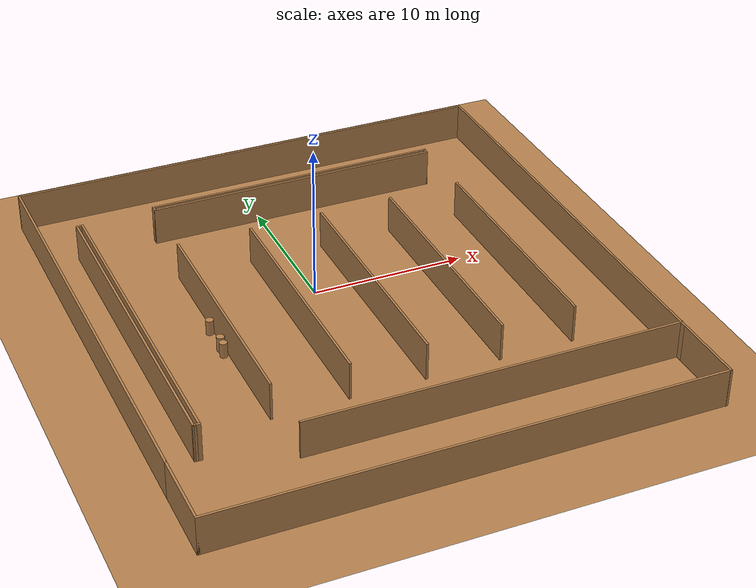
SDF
<sdf version="1.6">
 <world name="default">
  <model name="ground_plane">
   <pose>1.25 -2.75 0 0 -0 0</pose>
   <static>1</static>
   <link name="link">
    <collision name="collision">
     <geometry><plane><normal>0 0 1</normal><size>100 100</size></plane></geometry>
     <surface><friction><ode><mu>100</mu><mu2>50</mu2></ode></friction></surface>
    </collision>
    <visual name="visual">
     <cast_shadows>0</cast_shadows>
     <geometry><plane><normal>0 0 1</normal><size>32 34.75</size></plane></geometry>
     <material>
      <script><uri>file://media/materials/scripts/gazebo.material</uri><name>Gazebo/WoodFloor</name></script>
     </material>
    </visual>
   </link>
  </model>
  <model name="indoor_complex_maze">
   <pose>1.16883 -2.7022 0 0 -0 0</pose>
   <link name="Wall_109">
    <collision name="Wall_109_Collision">
     <geometry><box><size>24.25 0.15 2.5</size></box></geometry>
     <pose>0 0 1.25 0 -0 0</pose>
    </collision>
    <visual name="Wall_109_Visual">
     <pose>0 0 1.25 0 -0 0</pose>
     <geometry><box><size>24.25 0.15 2.5</size></box></geometry>
     <material>
      <script><uri>file://media/materials/scripts/gazebo.material</uri><name>Gazebo/Wood</name></script>
      <ambient>1 1 1 1</ambient>
     </material>
     <meta><layer>0</layer></meta>
    </visual>
    <pose>3.94097 -12.1183 0 0 -0 3.14159</pose>
   </link>
   <link name="Wall_32">
    <collision name="Wall_32_Collision">
     <geometry><box><size>32 0.15 2.5</size></box></geometry>
     <pose>0 0 1.25 0 -0 0</pose>
    </collision>
    <visual name="Wall_32_Visual">
     <pose>0 0 1.25 0 -0 0</pose>
     <geometry><box><size>32 0.15 2.5</size></box></geometry>
     <material>
      <script><uri>file://media/materials/scripts/gazebo.material</uri><name>Gazebo/Wood</name></script>
      <ambient>1 1 1 1</ambient>
     </material>
     <meta><layer>0</layer></meta>
    </visual>
    <pose>-0.065884 17.3564 0 0 -0 3.14159</pose>
   </link>
   <link name="Wall_33">
    <collision name="Wall_33_Collision">
     <geometry><box><size>30 0.15 2.5</size></box></geometry>
     <pose>0 0 1.25 0 -0 0</pose>
    </collision>
    <visual name="Wall_33_Visual">
     <pose>0 0 1.25 0 -0 0</pose>
     <geometry><box><size>30 0.15 2.5</size></box></geometry>
     <material>
      <script><uri>file://media/materials/scripts/gazebo.material</uri><name>Gazebo/Wood</name></script>
      <ambient>1 1 1 1</ambient>
     </material>
     <meta><layer>0</layer></meta>
    </visual>
    <pose>-15.9733 2.43136 0 0 -0 -1.56962</pose>
   </link>
   <link name="Wall_48">
    <collision name="Wall_48_Collision">
     <geometry><box><size>22.5 0.15 2.5</size></box></geometry>
     <pose>0 0 1.25 0 -0 0</pose>
    </collision>
    <visual name="Wall_48_Visual">
     <pose>0 0 1.25 0 -0 0</pose>
     <geometry><box><size>22.5 0.15 2.5</size></box></geometry>
     <material>
      <script><uri>file://media/materials/scripts/gazebo.material</uri><name>Gazebo/Wood</name></script>
      <ambient>1 1 1 1</ambient>
     </material>
     <meta><layer>0</layer></meta>
    </visual>
    <pose>-13.5764 1.04935 0 0 -0 1.5708</pose>
   </link>
   <link name="Wall_50">
    <collision name="Wall_50_Collision">
     <geometry><box><size>0.5 0.15 2.5</size></box></geometry>
     <pose>0 0 1.25 0 -0 0</pose>
    </collision>
    <visual name="Wall_50_Visual">
     <pose>0 0 1.25 0 -0 0</pose>
     <geometry><box><size>0.5 0.15 2.5</size></box></geometry>
     <material>
      <script><uri>file://media/materials/scripts/gazebo.material</uri><name>Gazebo/Wood</name></script>
      <ambient>1 1 1 1</ambient>
     </material>
     <meta><layer>0</layer></meta>
    </visual>
    <pose>-13.4014 12.2243 0 0 -0 0</pose>
   </link>
   <link name="Wall_52">
    <collision name="Wall_52_Collision">
     <geometry><box><size>0.15 0.15 2.5</size></box></geometry>
     <pose>0 0 1.25 0 -0 0</pose>
    </collision>
    <visual name="Wall_52_Visual">
     <pose>0 0 1.25 0 -0 0</pose>
     <geometry><box><size>0.15 0.15 2.5</size></box></geometry>
     <material>
      <script><uri>file://media/materials/scripts/gazebo.material</uri><name>Gazebo/Wood</name></script>
      <ambient>1 1 1 1</ambient>
     </material>
     <meta><layer>0</layer></meta>
    </visual>
    <pose>-13.4764 -10.1257 0 0 -0 0</pose>
   </link>
   <link name="Wall_53">
    <collision name="Wall_53_Collision">
     <geometry><box><size>0.15 0.15 2.5</size></box></geometry>
     <pose>0 0 1.25 0 -0 0</pose>
    </collision>
    <visual name="Wall_53_Visual">
     <pose>0 0 1.25 0 -0 0</pose>
     <geometry><box><size>0.15 0.15 2.5</size></box></geometry>
     <material>
      <script><uri>file://media/materials/scripts/gazebo.material</uri><name>Gazebo/Wood</name></script>
      <ambient>1 1 1 1</ambient>
     </material>
     <meta><layer>0</layer></meta>
    </visual>
    <pose>-13.4764 -10.1257 0 0 -0 0</pose>
   </link>
   <link name="Wall_55">
    <collision name="Wall_55_Collision">
     <geometry><box><size>22.5 0.15 2.5</size></box></geometry>
     <pose>0 0 1.25 0 -0 0</pose>
    </collision>
    <visual name="Wall_55_Visual">
     <pose>0 0 1.25 0 -0 0</pose>
     <geometry><box><size>22.5 0.15 2.5</size></box></geometry>
     <material>
      <script><uri>file://media/materials/scripts/gazebo.material</uri><name>Gazebo/Wood</name></script>
      <ambient>1 1 1 1</ambient>
     </material>
     <meta><layer>0</layer></meta>
    </visual>
    <pose>-13.2264 1.04935 0 0 -0 -1.5708</pose>
   </link>
   <link name="Wall_57">
    <collision name="Wall_57_Collision">
     <geometry><box><size>0.5 0.15 2.5</size></box></geometry>
     <pose>0 0 1.25 0 -0 0</pose>
    </collision>
    <visual name="Wall_57_Visual">
     <pose>0 0 1.25 0 -0 0</pose>
     <geometry><box><size>0.5 0.15 2.5</size></box></geometry>
     <material>
      <script><uri>file://media/materials/scripts/gazebo.material</uri><name>Gazebo/Wood</name></script>
      <ambient>1 1 1 1</ambient>
     </material>
     <meta><layer>0</layer></meta>
    </visual>
    <pose>-13.4014 -10.1257 0 0 -0 3.14159</pose>
   </link>
   <link name="Wall_61">
    <collision name="Wall_61_Collision">
     <geometry><box><size>0.5 0.15 2.5</size></box></geometry>
     <pose>0 0 1.25 0 -0 0</pose>
    </collision>
    <visual name="Wall_61_Visual">
     <pose>0 0 1.25 0 -0 0</pose>
     <geometry><box><size>0.5 0.15 2.5</size></box></geometry>
     <material>
      <script><uri>file://media/materials/scripts/gazebo.material</uri><name>Gazebo/Wood</name></script>
      <ambient>1 1 1 1</ambient>
     </material>
     <meta><layer>0</layer></meta>
    </visual>
    <pose>-8.37636 12.3993 0 0 -0 1.5708</pose>
   </link>
   <link name="Wall_63">
    <collision name="Wall_63_Collision">
     <geometry><box><size>19.5 0.15 2.5</size></box></geometry>
     <pose>0 0 1.25 0 -0 0</pose>
    </collision>
    <visual name="Wall_63_Visual">
     <pose>0 0 1.25 0 -0 0</pose>
     <geometry><box><size>19.5 0.15 2.5</size></box></geometry>
     <material>
      <script><uri>file://media/materials/scripts/gazebo.material</uri><name>Gazebo/Wood</name></script>
      <ambient>1 1 1 1</ambient>
     </material>
     <meta><layer>0</layer></meta>
    </visual>
    <pose>1.29864 12.2243 0 0 -0 0</pose>
   </link>
   <link name="Wall_65">
    <collision name="Wall_65_Collision">
     <geometry><box><size>19.5 0.15 2.5</size></box></geometry>
     <pose>0 0 1.25 0 -0 0</pose>
    </collision>
    <visual name="Wall_65_Visual">
     <pose>0 0 1.25 0 -0 0</pose>
     <geometry><box><size>19.5 0.15 2.5</size></box></geometry>
     <material>
      <script><uri>file://media/materials/scripts/gazebo.material</uri><name>Gazebo/Wood</name></script>
      <ambient>1 1 1 1</ambient>
     </material>
     <meta><layer>0</layer></meta>
    </visual>
    <pose>1.29864 12.5743 0 0 -0 0</pose>
   </link>
   <link name="Wall_74">
    <collision name="Wall_74_Collision">
     <geometry><box><size>16 0.15 2.5</size></box></geometry>
     <pose>0 0 1.25 0 -0 0</pose>
    </collision>
    <visual name="Wall_74_Visual">
     <pose>0 0 1.25 0 -0 0</pose>
     <geometry><box><size>16 0.15 2.5</size></box></geometry>
     <material>
      <script><uri>file://media/materials/scripts/gazebo.material</uri><name>Gazebo/Wood</name></script>
      <ambient>1 1 1 1</ambient>
     </material>
     <meta><layer>0</layer></meta>
    </visual>
    <pose>-3.52636 -0.300654 0 0 -0 -1.5708</pose>
   </link>
   <link name="Wall_77">
    <collision name="Wall_77_Collision">
     <geometry><box><size>16 0.15 2.5</size></box></geometry>
     <pose>0 0 1.25 0 -0 0</pose>
    </collision>
    <visual name="Wall_77_Visual">
     <pose>0 0 1.25 0 -0 0</pose>
     <geometry><box><size>16 0.15 2.5</size></box></geometry>
     <material>
      <script><uri>file://media/materials/scripts/gazebo.material</uri><name>Gazebo/Wood</name></script>
      <ambient>1 1 1 1</ambient>
     </material>
     <meta><layer>0</layer></meta>
    </visual>
    <pose>1.32364 -0.313949 0 0 -0 -1.5708</pose>
   </link>
   <link name="Wall_80">
    <collision name="Wall_80_Collision">
     <geometry><box><size>16 0.15 2.5</size></box></geometry>
     <pose>0 0 1.25 0 -0 0</pose>
    </collision>
    <visual name="Wall_80_Visual">
     <pose>0 0 1.25 0 -0 0</pose>
     <geometry><box><size>16 0.15 2.5</size></box></geometry>
     <material>
      <script><uri>file://media/materials/scripts/gazebo.material</uri><name>Gazebo/Wood</name></script>
      <ambient>1 1 1 1</ambient>
     </material>
     <meta><layer>0</layer></meta>
    </visual>
    <pose>6.17364 -0.300654 0 0 -0 -1.5708</pose>
   </link>
   <link name="Wall_83">
    <collision name="Wall_83_Collision">
     <geometry><box><size>16 0.15 2.5</size></box></geometry>
     <pose>0 0 1.25 0 -0 0</pose>
    </collision>
    <visual name="Wall_83_Visual">
     <pose>0 0 1.25 0 -0 0</pose>
     <geometry><box><size>16 0.15 2.5</size></box></geometry>
     <material>
      <script><uri>file://media/materials/scripts/gazebo.material</uri><name>Gazebo/Wood</name></script>
      <ambient>1 1 1 1</ambient>
     </material>
     <meta><layer>0</layer></meta>
    </visual>
    <pose>11.0236 -0.287648 0 0 -0 -1.5708</pose>
   </link>
   <link name="Wall_85">
    <collision name="Wall_85_Collision">
     <geometry><box><size>16 0.15 2.5</size></box></geometry>
     <pose>0 0 1.25 0 -0 0</pose>
    </collision>
    <visual name="Wall_85_Visual">
     <pose>0 0 1.25 0 -0 0</pose>
     <geometry><box><size>16 0.15 2.5</size></box></geometry>
     <material>
      <script><uri>file://media/materials/scripts/gazebo.material</uri><name>Gazebo/Wood</name></script>
      <ambient>1 1 1 1</ambient>
     </material>
     <meta><layer>0</layer></meta>
    </visual>
    <pose>-8.37636 -0.300654 0 0 -0 -1.5708</pose>
   </link>
   <link name="Wall_89">
    <collision name="Wall_89_Collision">
     <geometry><box><size>30 0.15 2.5</size></box></geometry>
     <pose>0 0 1.25 0 -0 0</pose>
    </collision>
    <visual name="Wall_89_Visual">
     <pose>0 0 1.25 0 -0 0</pose>
     <geometry><box><size>30 0.15 2.5</size></box></geometry>
     <material>
      <script><uri>file://media/materials/scripts/gazebo.material</uri><name>Gazebo/Wood</name></script>
      <ambient>1 1 1 1</ambient>
     </material>
     <meta><layer>0</layer></meta>
    </visual>
    <pose>15.9636 2.41856 0 0 -0 -1.5708</pose>
   </link>
   <link name="Wall_91">
    <collision name="Wall_91_Collision">
     <geometry><box><size>0.5 0.15 2.5</size></box></geometry>
     <pose>0 0 1.25 0 -0 0</pose>
    </collision>
    <visual name="Wall_91_Visual">
     <pose>0 0 1.25 0 -0 0</pose>
     <geometry><box><size>0.5 0.15 2.5</size></box></geometry>
     <material>
      <script><uri>file://media/materials/scripts/gazebo.material</uri><name>Gazebo/Wood</name></script>
      <ambient>1 1 1 1</ambient>
     </material>
     <meta><layer>0</layer></meta>
    </visual>
    <pose>10.9736 12.3993 0 0 -0 -1.5708</pose>
   </link>
   <link name="Wall_93">
    <collision name="Wall_93_Collision">
     <geometry><box><size>5 0.15 2.5</size></box></geometry>
     <pose>0 0 1.25 0 -0 0</pose>
    </collision>
    <visual name="Wall_93_Visual">
     <pose>0 0 1.25 0 -0 0</pose>
     <geometry><box><size>5 0.15 2.5</size></box></geometry>
     <material>
      <script><uri>file://media/materials/scripts/gazebo.material</uri><name>Gazebo/Wood</name></script>
      <ambient>1 1 1 1</ambient>
     </material>
     <meta><layer>0</layer></meta>
    </visual>
    <pose>15.9636 -14.9314 0 0 -0 -1.5708</pose>
   </link>
   <link name="Wall_95">
    <collision name="Wall_95_Collision">
     <geometry><box><size>5 0.15 2.5</size></box></geometry>
     <pose>0 0 1.25 0 -0 0</pose>
    </collision>
    <visual name="Wall_95_Visual">
     <pose>0 0 1.25 0 -0 0</pose>
     <geometry><box><size>5 0.15 2.5</size></box></geometry>
     <material>
      <script><uri>file://media/materials/scripts/gazebo.material</uri><name>Gazebo/Wood</name></script>
      <ambient>1 1 1 1</ambient>
     </material>
     <meta><layer>0</layer></meta>
    </visual>
    <pose>-15.9557 -14.9186 0 0 -0 -1.5708</pose>
   </link>
   <link name="Wall_96">
    <collision name="Wall_96_Collision">
     <geometry><box><size>32 0.15 2.5</size></box></geometry>
     <pose>0 0 1.25 0 -0 0</pose>
    </collision>
    <visual name="Wall_96_Visual">
     <pose>0 0 1.25 0 -0 0</pose>
     <geometry><box><size>32 0.15 2.5</size></box></geometry>
     <material>
      <script><uri>file://media/materials/scripts/gazebo.material</uri><name>Gazebo/Wood</name></script>
      <ambient>1 1 1 1</ambient>
     </material>
     <meta><layer>0</layer></meta>
    </visual>
    <pose>-0.030706 -17.3436 0 0 -0 0</pose>
   </link>
   <static>1</static>
  </model>
  <model name="unit_cylinder_11_clone_10">
   <pose>-7.58021 -4.13795 0.499992 1e-06 -1e-06 -9e-06</pose>
   <link name="link">
    <inertial>
     <mass>1</mass>
     <inertia><ixx>0.145833</ixx><ixy>0</ixy><ixz>0</ixz><iyy>0.145833</iyy><iyz>0</iyz><izz>0.125</izz></inertia>
    </inertial>
    <collision name="collision">
     <geometry><cylinder><radius>0.25</radius><length>1</length></cylinder></geometry>
    </collision>
    <visual name="visual">
     <geometry><cylinder><radius>0.25</radius><length>1</length></cylinder></geometry>
     <material>
      <script><name>Gazebo/Wood</name><uri>file://media/materials/scripts/gazebo.material</uri></script>
     </material>
    </visual>
   </link>
  </model>
  <model name="unit_cylinder_11_clone_17">
   <pose>-7.53253 -3.50681 0.499993 3e-06 -0 3e-06</pose>
   <link name="link">
    <inertial>
     <mass>1</mass>
     <inertia><ixx>0.145833</ixx><ixy>0</ixy><ixz>0</ixz><iyy>0.145833</iyy><iyz>0</iyz><izz>0.125</izz></inertia>
    </inertial>
    <collision name="collision">
     <geometry><cylinder><radius>0.25</radius><length>1</length></cylinder></geometry>
    </collision>
    <visual name="visual">
     <geometry><cylinder><radius>0.25</radius><length>1</length></cylinder></geometry>
     <material>
      <script><name>Gazebo/Wood</name><uri>file://media/materials/scripts/gazebo.material</uri></script>
     </material>
    </visual>
   </link>
  </model>
  <model name="unit_cylinder_11_clone_37">
   <pose>-7.53252 -1.59726 0.499992 0 -0 8e-06</pose>
   <link name="link">
    <inertial>
     <mass>1</mass>
     <inertia><ixx>0.145833</ixx><ixy>0</ixy><ixz>0</ixz><iyy>0.145833</iyy><iyz>0</iyz><izz>0.125</izz></inertia>
    </inertial>
    <collision name="collision">
     <geometry><cylinder><radius>0.25</radius><length>1</length></cylinder></geometry>
    </collision>
    <visual name="visual">
     <geometry><cylinder><radius>0.25</radius><length>1</length></cylinder></geometry>
     <material>
      <script><name>Gazebo/Wood</name><uri>file://media/materials/scripts/gazebo.material</uri></script>
     </material>
    </visual>
   </link>
  </model>
 </world>
</sdf>
